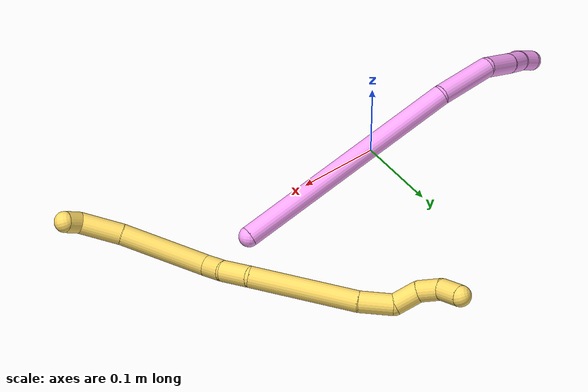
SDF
<sdf version="1.7">
 <world name="default">
  <model name="4">
   <static>0</static>
   <link name="4">
    <collision name="collision-cylinder-e_1_1_4">
     <pose>-0.086989 -0.038859 0.109248 0.341741 -0.643637 -0.114935</pose>
     <geometry><cylinder><radius>0.0125</radius><length>0.289912</length></cylinder></geometry>
     <surface>
      <friction><ode><mu>1.16</mu><mu2>1.16</mu2><slip1>0</slip1><slip2>0</slip2></ode></friction>
      <contact><ode><kp>1e+06</kp><kd>1</kd><max_vel>0</max_vel><min_depth>0.001</min_depth></ode></contact>
     </surface>
    </collision>
    <visual name="visual-cylinder-e_1_1_4">
     <pose>-0.086989 -0.038859 0.109248 0.341741 -0.643637 -0.114935</pose>
     <geometry><cylinder><radius>0.0125</radius><length>0.289912</length></cylinder></geometry>
     <material><ambient>1 0.65098 0.996078 1</ambient></material>
    </visual>
    <collision name="collision-cylinder-e_2_4_5">
     <pose>-0.199954 -0.076171 0.247221 -0.053809 -0.734435 0.020703</pose>
     <geometry><cylinder><radius>0.0125</radius><length>0.077517</length></cylinder></geometry>
     <surface>
      <friction><ode><mu>1.16</mu><mu2>1.16</mu2><slip1>0</slip1><slip2>0</slip2></ode></friction>
      <contact><ode><kp>1e+06</kp><kd>1</kd><max_vel>0</max_vel><min_depth>0.001</min_depth></ode></contact>
     </surface>
    </collision>
    <visual name="visual-cylinder-e_2_4_5">
     <pose>-0.199954 -0.076171 0.247221 -0.053809 -0.734435 0.020703</pose>
     <geometry><cylinder><radius>0.0125</radius><length>0.077517</length></cylinder></geometry>
     <material><ambient>1 0.65098 0.996078 1</ambient></material>
    </visual>
    <collision name="collision-cylinder-e_3_5_6">
     <pose>-0.240672 -0.062839 0.292552 -0.617192 -0.626711 0.20586</pose>
     <geometry><cylinder><radius>0.0125</radius><length>0.050279</length></cylinder></geometry>
     <surface>
      <friction><ode><mu>1.16</mu><mu2>1.16</mu2><slip1>0</slip1><slip2>0</slip2></ode></friction>
      <contact><ode><kp>1e+06</kp><kd>1</kd><max_vel>0</max_vel><min_depth>0.001</min_depth></ode></contact>
     </surface>
    </collision>
    <visual name="visual-cylinder-e_3_5_6">
     <pose>-0.240672 -0.062839 0.292552 -0.617192 -0.626711 0.20586</pose>
     <geometry><cylinder><radius>0.0125</radius><length>0.050279</length></cylinder></geometry>
     <material><ambient>1 0.65098 0.996078 1</ambient></material>
    </visual>
    <collision name="collision-cylinder-e_4_6_7">
     <pose>-0.264517 -0.043629 0.317596 -0.721669 -0.680566 0.265636</pose>
     <geometry><cylinder><radius>0.0125</radius><length>0.028926</length></cylinder></geometry>
     <surface>
      <friction><ode><mu>1.16</mu><mu2>1.16</mu2><slip1>0</slip1><slip2>0</slip2></ode></friction>
      <contact><ode><kp>1e+06</kp><kd>1</kd><max_vel>0</max_vel><min_depth>0.001</min_depth></ode></contact>
     </surface>
    </collision>
    <visual name="visual-cylinder-e_4_6_7">
     <pose>-0.264517 -0.043629 0.317596 -0.721669 -0.680566 0.265636</pose>
     <geometry><cylinder><radius>0.0125</radius><length>0.028926</length></cylinder></geometry>
     <material><ambient>1 0.65098 0.996078 1</ambient></material>
    </visual>
    <collision name="collision-cylinder-e_5_7_8">
     <pose>-0.281042 -0.028095 0.326838 -1.47195 -0.739001 0.67474</pose>
     <geometry><cylinder><radius>0.0125</radius><length>0.022045</length></cylinder></geometry>
     <surface>
      <friction><ode><mu>1.16</mu><mu2>1.16</mu2><slip1>0</slip1><slip2>0</slip2></ode></friction>
      <contact><ode><kp>1e+06</kp><kd>1</kd><max_vel>0</max_vel><min_depth>0.001</min_depth></ode></contact>
     </surface>
    </collision>
    <visual name="visual-cylinder-e_5_7_8">
     <pose>-0.281042 -0.028095 0.326838 -1.47195 -0.739001 0.67474</pose>
     <geometry><cylinder><radius>0.0125</radius><length>0.022045</length></cylinder></geometry>
     <material><ambient>1 0.65098 0.996078 1</ambient></material>
    </visual>
    <collision name="collision-cylinder-e_6_8_2">
     <pose>-0.29632 -0.011959 0.338556 -0.634249 -0.525352 0.176043</pose>
     <geometry><cylinder><radius>0.0125</radius><length>0.031321</length></cylinder></geometry>
     <surface>
      <friction><ode><mu>1.16</mu><mu2>1.16</mu2><slip1>0</slip1><slip2>0</slip2></ode></friction>
      <contact><ode><kp>1e+06</kp><kd>1</kd><max_vel>0</max_vel><min_depth>0.001</min_depth></ode></contact>
     </surface>
    </collision>
    <visual name="visual-cylinder-e_6_8_2">
     <pose>-0.29632 -0.011959 0.338556 -0.634249 -0.525352 0.176043</pose>
     <geometry><cylinder><radius>0.0125</radius><length>0.031321</length></cylinder></geometry>
     <material><ambient>1 0.65098 0.996078 1</ambient></material>
    </visual>
    <collision name="collision-sphere-2">
     <pose>-0.304174 -0.003931 0.349469 0 -0 0</pose>
     <geometry><sphere><radius>0.0125</radius></sphere></geometry>
     <surface>
      <friction><ode><mu>1.16</mu><mu2>1.16</mu2><slip1>0</slip1><slip2>0</slip2></ode></friction>
      <contact><ode><kp>1e+06</kp><kd>1</kd><max_vel>0</max_vel><min_depth>0.001</min_depth></ode></contact>
     </surface>
    </collision>
    <visual name="visual-sphere-2">
     <pose>-0.304174 -0.003931 0.349469 0 -0 0</pose>
     <geometry><sphere><radius>0.0125</radius></sphere></geometry>
     <material><ambient>1 0.65098 0.996078 1</ambient></material>
    </visual>
    <collision name="collision-sphere-4">
     <pose>-0.173979 -0.077718 0.218496 0 -0 0</pose>
     <geometry><sphere><radius>0.0125</radius></sphere></geometry>
     <surface>
      <friction><ode><mu>1.16</mu><mu2>1.16</mu2><slip1>0</slip1><slip2>0</slip2></ode></friction>
      <contact><ode><kp>1e+06</kp><kd>1</kd><max_vel>0</max_vel><min_depth>0.001</min_depth></ode></contact>
     </surface>
    </collision>
    <visual name="visual-sphere-4">
     <pose>-0.173979 -0.077718 0.218496 0 -0 0</pose>
     <geometry><sphere><radius>0.0125</radius></sphere></geometry>
     <material><ambient>1 0.65098 0.996078 1</ambient></material>
    </visual>
    <collision name="collision-sphere-1">
     <geometry><sphere><radius>0.0125</radius></sphere></geometry>
     <surface>
      <friction><ode><mu>1.16</mu><mu2>1.16</mu2><slip1>0</slip1><slip2>0</slip2></ode></friction>
      <contact><ode><kp>1e+06</kp><kd>1</kd><max_vel>0</max_vel><min_depth>0.001</min_depth></ode></contact>
     </surface>
    </collision>
    <visual name="visual-sphere-1">
     <geometry><sphere><radius>0.0125</radius></sphere></geometry>
     <material><ambient>1 0.65098 0.996078 1</ambient></material>
    </visual>
    <collision name="collision-sphere-8">
     <pose>-0.288466 -0.019988 0.327642 0 -0 0</pose>
     <geometry><sphere><radius>0.0125</radius></sphere></geometry>
     <surface>
      <friction><ode><mu>1.16</mu><mu2>1.16</mu2><slip1>0</slip1><slip2>0</slip2></ode></friction>
      <contact><ode><kp>1e+06</kp><kd>1</kd><max_vel>0</max_vel><min_depth>0.001</min_depth></ode></contact>
     </surface>
    </collision>
    <visual name="visual-sphere-8">
     <pose>-0.288466 -0.019988 0.327642 0 -0 0</pose>
     <geometry><sphere><radius>0.0125</radius></sphere></geometry>
     <material><ambient>1 0.65098 0.996078 1</ambient></material>
    </visual>
    <collision name="collision-sphere-5">
     <pose>-0.225928 -0.074624 0.275946 0 -0 0</pose>
     <geometry><sphere><radius>0.0125</radius></sphere></geometry>
     <surface>
      <friction><ode><mu>1.16</mu><mu2>1.16</mu2><slip1>0</slip1><slip2>0</slip2></ode></friction>
      <contact><ode><kp>1e+06</kp><kd>1</kd><max_vel>0</max_vel><min_depth>0.001</min_depth></ode></contact>
     </surface>
    </collision>
    <visual name="visual-sphere-5">
     <pose>-0.225928 -0.074624 0.275946 0 -0 0</pose>
     <geometry><sphere><radius>0.0125</radius></sphere></geometry>
     <material><ambient>1 0.65098 0.996078 1</ambient></material>
    </visual>
    <collision name="collision-sphere-6">
     <pose>-0.255416 -0.051055 0.309157 0 -0 0</pose>
     <geometry><sphere><radius>0.0125</radius></sphere></geometry>
     <surface>
      <friction><ode><mu>1.16</mu><mu2>1.16</mu2><slip1>0</slip1><slip2>0</slip2></ode></friction>
      <contact><ode><kp>1e+06</kp><kd>1</kd><max_vel>0</max_vel><min_depth>0.001</min_depth></ode></contact>
     </surface>
    </collision>
    <visual name="visual-sphere-6">
     <pose>-0.255416 -0.051055 0.309157 0 -0 0</pose>
     <geometry><sphere><radius>0.0125</radius></sphere></geometry>
     <material><ambient>1 0.65098 0.996078 1</ambient></material>
    </visual>
    <collision name="collision-sphere-7">
     <pose>-0.273617 -0.036203 0.326034 0 -0 0</pose>
     <geometry><sphere><radius>0.0125</radius></sphere></geometry>
     <surface>
      <friction><ode><mu>1.16</mu><mu2>1.16</mu2><slip1>0</slip1><slip2>0</slip2></ode></friction>
      <contact><ode><kp>1e+06</kp><kd>1</kd><max_vel>0</max_vel><min_depth>0.001</min_depth></ode></contact>
     </surface>
    </collision>
    <visual name="visual-sphere-7">
     <pose>-0.273617 -0.036203 0.326034 0 -0 0</pose>
     <geometry><sphere><radius>0.0125</radius></sphere></geometry>
     <material><ambient>1 0.65098 0.996078 1</ambient></material>
    </visual>
    <inertial>
     <pose>-0.151896 -0.045171 0.185082 0 -0 0</pose>
     <mass>0.5</mass>
     <inertia>
      <ixx>0.001464</ixx>
      <ixy>0</ixy>
      <ixz>0</ixz>
      <iyy>0.001835</iyy>
      <iyz>0</iyz>
      <izz>0.001828</izz>
     </inertia>
    </inertial>
   </link>
   <pose>0.209492 0.036043 0.011522 -1.69564 0.129797 0.916452</pose>
  </model>
  <model name="5">
   <static>0</static>
   <link name="5">
    <collision name="collision-cylinder-e_1_1_4">
     <pose>0.002621 0.009016 -0.004727 -2.05371 0.25198 -0.412884</pose>
     <geometry><cylinder><radius>0.0125</radius><length>0.021025</length></cylinder></geometry>
     <surface>
      <friction><ode><mu>1.16</mu><mu2>1.16</mu2><slip1>0</slip1><slip2>0</slip2></ode></friction>
      <contact><ode><kp>1e+06</kp><kd>1</kd><max_vel>0</max_vel><min_depth>0.001</min_depth></ode></contact>
     </surface>
    </collision>
    <visual name="visual-cylinder-e_1_1_4">
     <pose>0.002621 0.009016 -0.004727 -2.05371 0.25198 -0.412884</pose>
     <geometry><cylinder><radius>0.0125</radius><length>0.021025</length></cylinder></geometry>
     <material><ambient>1 0.858824 0.4 1</ambient></material>
    </visual>
    <collision name="collision-cylinder-e_2_4_5">
     <pose>-0.001505 0.031516 -0.030174 -2.56467 -0.26643 0.848381</pose>
     <geometry><cylinder><radius>0.0125</radius><length>0.051249</length></cylinder></geometry>
     <surface>
      <friction><ode><mu>1.16</mu><mu2>1.16</mu2><slip1>0</slip1><slip2>0</slip2></ode></friction>
      <contact><ode><kp>1e+06</kp><kd>1</kd><max_vel>0</max_vel><min_depth>0.001</min_depth></ode></contact>
     </surface>
    </collision>
    <visual name="visual-cylinder-e_2_4_5">
     <pose>-0.001505 0.031516 -0.030174 -2.56467 -0.26643 0.848381</pose>
     <geometry><cylinder><radius>0.0125</radius><length>0.051249</length></cylinder></geometry>
     <material><ambient>1 0.858824 0.4 1</ambient></material>
    </visual>
    <collision name="collision-cylinder-e_3_5_6">
     <pose>-0.027662 0.070032 -0.092427 -2.5992 -0.380744 1.21212</pose>
     <geometry><cylinder><radius>0.0125</radius><length>0.104468</length></cylinder></geometry>
     <surface>
      <friction><ode><mu>1.16</mu><mu2>1.16</mu2><slip1>0</slip1><slip2>0</slip2></ode></friction>
      <contact><ode><kp>1e+06</kp><kd>1</kd><max_vel>0</max_vel><min_depth>0.001</min_depth></ode></contact>
     </surface>
    </collision>
    <visual name="visual-cylinder-e_3_5_6">
     <pose>-0.027662 0.070032 -0.092427 -2.5992 -0.380744 1.21212</pose>
     <geometry><cylinder><radius>0.0125</radius><length>0.104468</length></cylinder></geometry>
     <material><ambient>1 0.858824 0.4 1</ambient></material>
    </visual>
    <collision name="collision-cylinder-e_4_6_7">
     <pose>-0.054975 0.092111 -0.145731 2.89586 -0.57723 -2.35328</pose>
     <geometry><cylinder><radius>0.0125</radius><length>0.028962</length></cylinder></geometry>
     <surface>
      <friction><ode><mu>1.16</mu><mu2>1.16</mu2><slip1>0</slip1><slip2>0</slip2></ode></friction>
      <contact><ode><kp>1e+06</kp><kd>1</kd><max_vel>0</max_vel><min_depth>0.001</min_depth></ode></contact>
     </surface>
    </collision>
    <visual name="visual-cylinder-e_4_6_7">
     <pose>-0.054975 0.092111 -0.145731 2.89586 -0.57723 -2.35328</pose>
     <geometry><cylinder><radius>0.0125</radius><length>0.028962</length></cylinder></geometry>
     <material><ambient>1 0.858824 0.4 1</ambient></material>
    </visual>
    <collision name="collision-cylinder-e_5_7_8">
     <pose>-0.070669 0.089262 -0.173717 -3.13527 -0.447889 3.11385</pose>
     <geometry><cylinder><radius>0.0125</radius><length>0.035981</length></cylinder></geometry>
     <surface>
      <friction><ode><mu>1.16</mu><mu2>1.16</mu2><slip1>0</slip1><slip2>0</slip2></ode></friction>
      <contact><ode><kp>1e+06</kp><kd>1</kd><max_vel>0</max_vel><min_depth>0.001</min_depth></ode></contact>
     </surface>
    </collision>
    <visual name="visual-cylinder-e_5_7_8">
     <pose>-0.070669 0.089262 -0.173717 -3.13527 -0.447889 3.11385</pose>
     <geometry><cylinder><radius>0.0125</radius><length>0.035981</length></cylinder></geometry>
     <material><ambient>1 0.858824 0.4 1</ambient></material>
    </visual>
    <collision name="collision-cylinder-e_6_8_9">
     <pose>-0.098762 0.11116 -0.246788 -2.77552 -0.32184 1.43983</pose>
     <geometry><cylinder><radius>0.0125</radius><length>0.12837</length></cylinder></geometry>
     <surface>
      <friction><ode><mu>1.16</mu><mu2>1.16</mu2><slip1>0</slip1><slip2>0</slip2></ode></friction>
      <contact><ode><kp>1e+06</kp><kd>1</kd><max_vel>0</max_vel><min_depth>0.001</min_depth></ode></contact>
     </surface>
    </collision>
    <visual name="visual-cylinder-e_6_8_9">
     <pose>-0.098762 0.11116 -0.246788 -2.77552 -0.32184 1.43983</pose>
     <geometry><cylinder><radius>0.0125</radius><length>0.12837</length></cylinder></geometry>
     <material><ambient>1 0.858824 0.4 1</ambient></material>
    </visual>
    <collision name="collision-cylinder-e_7_9_10">
     <pose>-0.122542 0.139986 -0.322254 -2.7804 -0.173007 0.886829</pose>
     <geometry><cylinder><radius>0.0125</radius><length>0.040392</length></cylinder></geometry>
     <surface>
      <friction><ode><mu>1.16</mu><mu2>1.16</mu2><slip1>0</slip1><slip2>0</slip2></ode></friction>
      <contact><ode><kp>1e+06</kp><kd>1</kd><max_vel>0</max_vel><min_depth>0.001</min_depth></ode></contact>
     </surface>
    </collision>
    <visual name="visual-cylinder-e_7_9_10">
     <pose>-0.122542 0.139986 -0.322254 -2.7804 -0.173007 0.886829</pose>
     <geometry><cylinder><radius>0.0125</radius><length>0.040392</length></cylinder></geometry>
     <material><ambient>1 0.858824 0.4 1</ambient></material>
    </visual>
    <collision name="collision-cylinder-e_8_10_11">
     <pose>-0.120047 0.149234 -0.355297 -2.98912 0.388157 -2.40028</pose>
     <geometry><cylinder><radius>0.0125</radius><length>0.031552</length></cylinder></geometry>
     <surface>
      <friction><ode><mu>1.16</mu><mu2>1.16</mu2><slip1>0</slip1><slip2>0</slip2></ode></friction>
      <contact><ode><kp>1e+06</kp><kd>1</kd><max_vel>0</max_vel><min_depth>0.001</min_depth></ode></contact>
     </surface>
    </collision>
    <visual name="visual-cylinder-e_8_10_11">
     <pose>-0.120047 0.149234 -0.355297 -2.98912 0.388157 -2.40028</pose>
     <geometry><cylinder><radius>0.0125</radius><length>0.031552</length></cylinder></geometry>
     <material><ambient>1 0.858824 0.4 1</ambient></material>
    </visual>
    <collision name="collision-cylinder-e_9_11_12">
     <pose>-0.117191 0.14964 -0.384044 3.01566 -0.212597 -2.07417</pose>
     <geometry><cylinder><radius>0.0125</radius><length>0.029521</length></cylinder></geometry>
     <surface>
      <friction><ode><mu>1.16</mu><mu2>1.16</mu2><slip1>0</slip1><slip2>0</slip2></ode></friction>
      <contact><ode><kp>1e+06</kp><kd>1</kd><max_vel>0</max_vel><min_depth>0.001</min_depth></ode></contact>
     </surface>
    </collision>
    <visual name="visual-cylinder-e_9_11_12">
     <pose>-0.117191 0.14964 -0.384044 3.01566 -0.212597 -2.07417</pose>
     <geometry><cylinder><radius>0.0125</radius><length>0.029521</length></cylinder></geometry>
     <material><ambient>1 0.858824 0.4 1</ambient></material>
    </visual>
    <collision name="collision-cylinder-e_10_12_2">
     <pose>-0.128505 0.14532 -0.409727 2.92449 -0.613636 -2.47899</pose>
     <geometry><cylinder><radius>0.0125</radius><length>0.02848</length></cylinder></geometry>
     <surface>
      <friction><ode><mu>1.16</mu><mu2>1.16</mu2><slip1>0</slip1><slip2>0</slip2></ode></friction>
      <contact><ode><kp>1e+06</kp><kd>1</kd><max_vel>0</max_vel><min_depth>0.001</min_depth></ode></contact>
     </surface>
    </collision>
    <visual name="visual-cylinder-e_10_12_2">
     <pose>-0.128505 0.14532 -0.409727 2.92449 -0.613636 -2.47899</pose>
     <geometry><cylinder><radius>0.0125</radius><length>0.02848</length></cylinder></geometry>
     <material><ambient>1 0.858824 0.4 1</ambient></material>
    </visual>
    <collision name="collision-sphere-2">
     <pose>-0.136705 0.142812 -0.421095 0 -0 0</pose>
     <geometry><sphere><radius>0.0125</radius></sphere></geometry>
     <surface>
      <friction><ode><mu>1.16</mu><mu2>1.16</mu2><slip1>0</slip1><slip2>0</slip2></ode></friction>
      <contact><ode><kp>1e+06</kp><kd>1</kd><max_vel>0</max_vel><min_depth>0.001</min_depth></ode></contact>
     </surface>
    </collision>
    <visual name="visual-sphere-2">
     <pose>-0.136705 0.142812 -0.421095 0 -0 0</pose>
     <geometry><sphere><radius>0.0125</radius></sphere></geometry>
     <material><ambient>1 0.858824 0.4 1</ambient></material>
    </visual>
    <collision name="collision-sphere-12">
     <pose>-0.120305 0.147827 -0.398358 0 -0 0</pose>
     <geometry><sphere><radius>0.0125</radius></sphere></geometry>
     <surface>
      <friction><ode><mu>1.16</mu><mu2>1.16</mu2><slip1>0</slip1><slip2>0</slip2></ode></friction>
      <contact><ode><kp>1e+06</kp><kd>1</kd><max_vel>0</max_vel><min_depth>0.001</min_depth></ode></contact>
     </surface>
    </collision>
    <visual name="visual-sphere-12">
     <pose>-0.120305 0.147827 -0.398358 0 -0 0</pose>
     <geometry><sphere><radius>0.0125</radius></sphere></geometry>
     <material><ambient>1 0.858824 0.4 1</ambient></material>
    </visual>
    <collision name="collision-sphere-11">
     <pose>-0.114076 0.151452 -0.36973 0 -0 0</pose>
     <geometry><sphere><radius>0.0125</radius></sphere></geometry>
     <surface>
      <friction><ode><mu>1.16</mu><mu2>1.16</mu2><slip1>0</slip1><slip2>0</slip2></ode></friction>
      <contact><ode><kp>1e+06</kp><kd>1</kd><max_vel>0</max_vel><min_depth>0.001</min_depth></ode></contact>
     </surface>
    </collision>
    <visual name="visual-sphere-11">
     <pose>-0.114076 0.151452 -0.36973 0 -0 0</pose>
     <geometry><sphere><radius>0.0125</radius></sphere></geometry>
     <material><ambient>1 0.858824 0.4 1</ambient></material>
    </visual>
    <collision name="collision-sphere-10">
     <pose>-0.126018 0.147016 -0.340865 0 -0 0</pose>
     <geometry><sphere><radius>0.0125</radius></sphere></geometry>
     <surface>
      <friction><ode><mu>1.16</mu><mu2>1.16</mu2><slip1>0</slip1><slip2>0</slip2></ode></friction>
      <contact><ode><kp>1e+06</kp><kd>1</kd><max_vel>0</max_vel><min_depth>0.001</min_depth></ode></contact>
     </surface>
    </collision>
    <visual name="visual-sphere-10">
     <pose>-0.126018 0.147016 -0.340865 0 -0 0</pose>
     <geometry><sphere><radius>0.0125</radius></sphere></geometry>
     <material><ambient>1 0.858824 0.4 1</ambient></material>
    </visual>
    <collision name="collision-sphere-9">
     <pose>-0.119065 0.132955 -0.303643 0 -0 0</pose>
     <geometry><sphere><radius>0.0125</radius></sphere></geometry>
     <surface>
      <friction><ode><mu>1.16</mu><mu2>1.16</mu2><slip1>0</slip1><slip2>0</slip2></ode></friction>
      <contact><ode><kp>1e+06</kp><kd>1</kd><max_vel>0</max_vel><min_depth>0.001</min_depth></ode></contact>
     </surface>
    </collision>
    <visual name="visual-sphere-9">
     <pose>-0.119065 0.132955 -0.303643 0 -0 0</pose>
     <geometry><sphere><radius>0.0125</radius></sphere></geometry>
     <material><ambient>1 0.858824 0.4 1</ambient></material>
    </visual>
    <collision name="collision-sphere-4">
     <pose>0.005242 0.018033 -0.009455 0 -0 0</pose>
     <geometry><sphere><radius>0.0125</radius></sphere></geometry>
     <surface>
      <friction><ode><mu>1.16</mu><mu2>1.16</mu2><slip1>0</slip1><slip2>0</slip2></ode></friction>
      <contact><ode><kp>1e+06</kp><kd>1</kd><max_vel>0</max_vel><min_depth>0.001</min_depth></ode></contact>
     </surface>
    </collision>
    <visual name="visual-sphere-4">
     <pose>0.005242 0.018033 -0.009455 0 -0 0</pose>
     <geometry><sphere><radius>0.0125</radius></sphere></geometry>
     <material><ambient>1 0.858824 0.4 1</ambient></material>
    </visual>
    <collision name="collision-sphere-1">
     <geometry><sphere><radius>0.0125</radius></sphere></geometry>
     <surface>
      <friction><ode><mu>1.16</mu><mu2>1.16</mu2><slip1>0</slip1><slip2>0</slip2></ode></friction>
      <contact><ode><kp>1e+06</kp><kd>1</kd><max_vel>0</max_vel><min_depth>0.001</min_depth></ode></contact>
     </surface>
    </collision>
    <visual name="visual-sphere-1">
     <geometry><sphere><radius>0.0125</radius></sphere></geometry>
     <material><ambient>1 0.858824 0.4 1</ambient></material>
    </visual>
    <collision name="collision-sphere-8">
     <pose>-0.07846 0.089364 -0.189933 0 -0 0</pose>
     <geometry><sphere><radius>0.0125</radius></sphere></geometry>
     <surface>
      <friction><ode><mu>1.16</mu><mu2>1.16</mu2><slip1>0</slip1><slip2>0</slip2></ode></friction>
      <contact><ode><kp>1e+06</kp><kd>1</kd><max_vel>0</max_vel><min_depth>0.001</min_depth></ode></contact>
     </surface>
    </collision>
    <visual name="visual-sphere-8">
     <pose>-0.07846 0.089364 -0.189933 0 -0 0</pose>
     <geometry><sphere><radius>0.0125</radius></sphere></geometry>
     <material><ambient>1 0.858824 0.4 1</ambient></material>
    </visual>
    <collision name="collision-sphere-5">
     <pose>-0.008251 0.045 -0.050894 0 -0 0</pose>
     <geometry><sphere><radius>0.0125</radius></sphere></geometry>
     <surface>
      <friction><ode><mu>1.16</mu><mu2>1.16</mu2><slip1>0</slip1><slip2>0</slip2></ode></friction>
      <contact><ode><kp>1e+06</kp><kd>1</kd><max_vel>0</max_vel><min_depth>0.001</min_depth></ode></contact>
     </surface>
    </collision>
    <visual name="visual-sphere-5">
     <pose>-0.008251 0.045 -0.050894 0 -0 0</pose>
     <geometry><sphere><radius>0.0125</radius></sphere></geometry>
     <material><ambient>1 0.858824 0.4 1</ambient></material>
    </visual>
    <collision name="collision-sphere-6">
     <pose>-0.047073 0.095063 -0.133961 0 -0 0</pose>
     <geometry><sphere><radius>0.0125</radius></sphere></geometry>
     <surface>
      <friction><ode><mu>1.16</mu><mu2>1.16</mu2><slip1>0</slip1><slip2>0</slip2></ode></friction>
      <contact><ode><kp>1e+06</kp><kd>1</kd><max_vel>0</max_vel><min_depth>0.001</min_depth></ode></contact>
     </surface>
    </collision>
    <visual name="visual-sphere-6">
     <pose>-0.047073 0.095063 -0.133961 0 -0 0</pose>
     <geometry><sphere><radius>0.0125</radius></sphere></geometry>
     <material><ambient>1 0.858824 0.4 1</ambient></material>
    </visual>
    <collision name="collision-sphere-7">
     <pose>-0.062878 0.089159 -0.157501 0 -0 0</pose>
     <geometry><sphere><radius>0.0125</radius></sphere></geometry>
     <surface>
      <friction><ode><mu>1.16</mu><mu2>1.16</mu2><slip1>0</slip1><slip2>0</slip2></ode></friction>
      <contact><ode><kp>1e+06</kp><kd>1</kd><max_vel>0</max_vel><min_depth>0.001</min_depth></ode></contact>
     </surface>
    </collision>
    <visual name="visual-sphere-7">
     <pose>-0.062878 0.089159 -0.157501 0 -0 0</pose>
     <geometry><sphere><radius>0.0125</radius></sphere></geometry>
     <material><ambient>1 0.858824 0.4 1</ambient></material>
    </visual>
    <inertial>
     <pose>-0.071163 0.096378 -0.201372 0 -0 0</pose>
     <mass>0.5</mass>
     <inertia>
      <ixx>0.000308</ixx>
      <ixy>0</ixy>
      <ixz>0</ixz>
      <iyy>0.000265</iyy>
      <iyz>0</iyz>
      <izz>-4.8e-05</izz>
     </inertia>
    </inertial>
   </link>
   <pose>0.388504 -0.077136 0.054829 -1.9899 -0.259789 -2.16353</pose>
  </model>
 </world>
</sdf>
